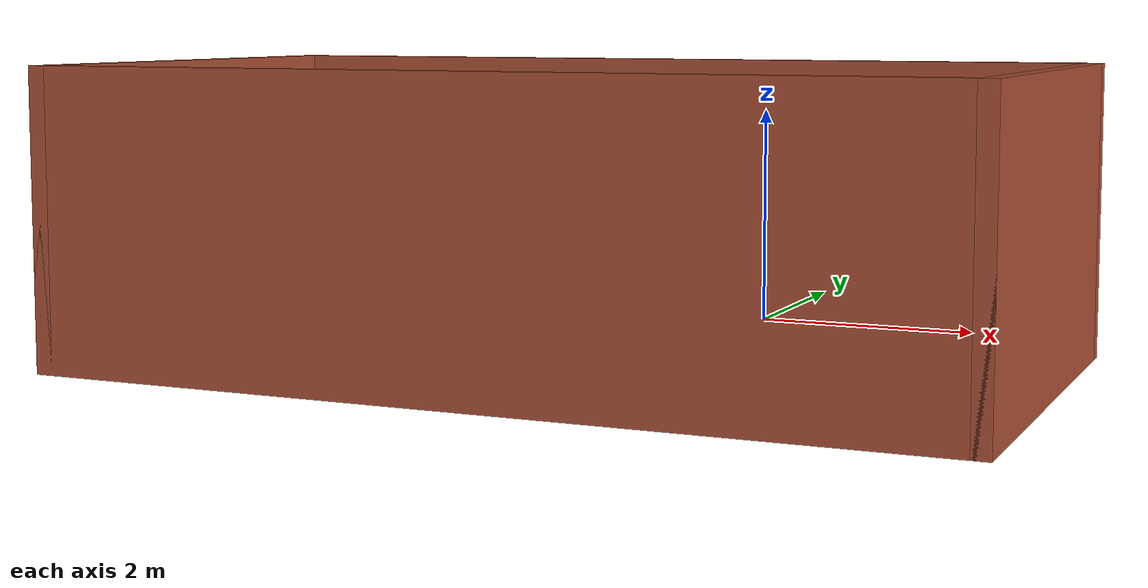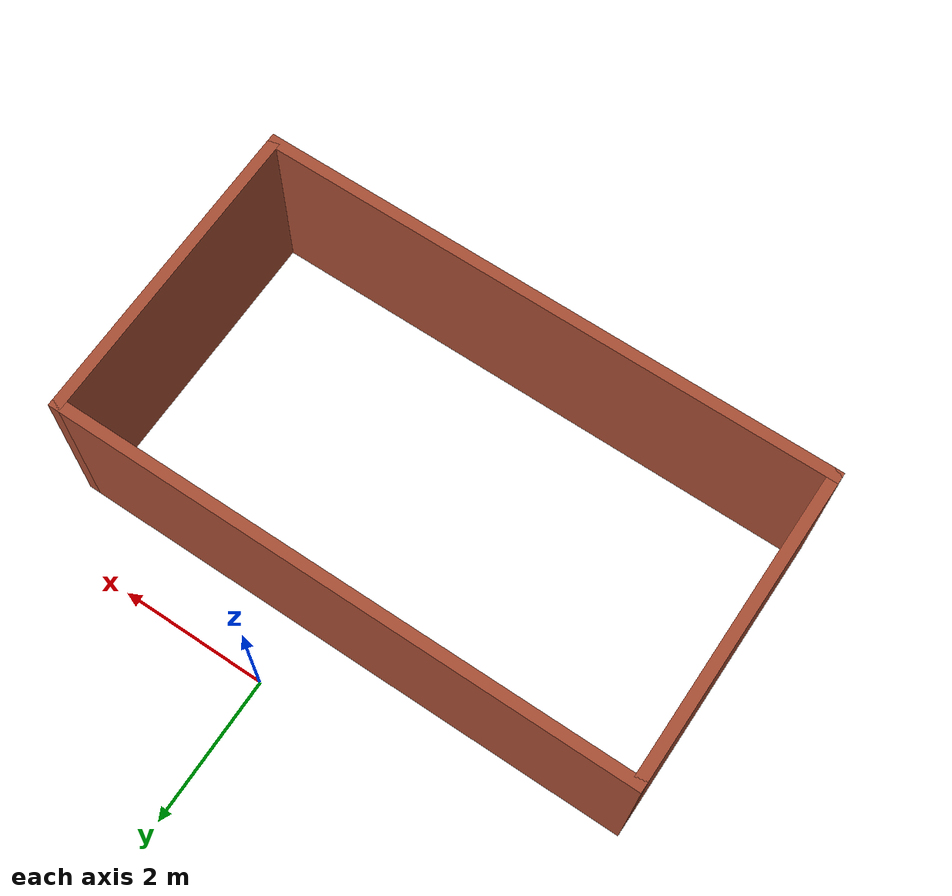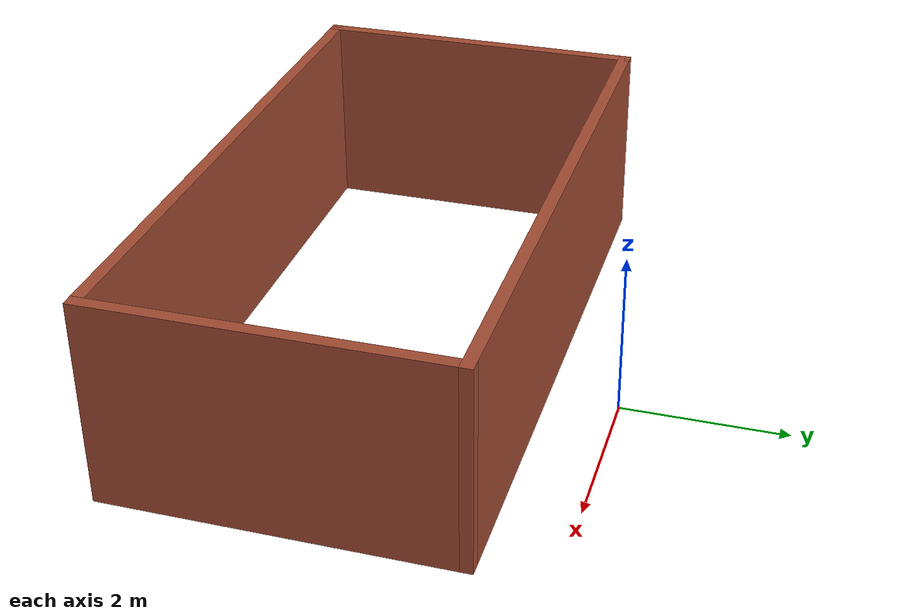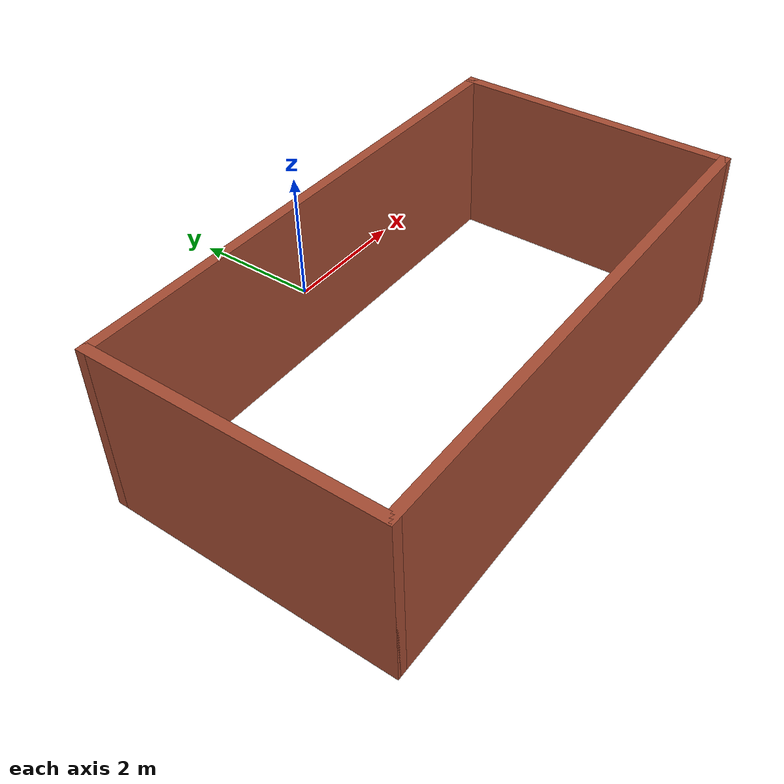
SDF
<?xml version='1.0'?>
<sdf version='1.6'>
  <model name='new_world'>
    <pose frame=''>-0.63 -2.97 0 0 -0 0</pose>
    <link name='Wall_0'>
      <collision name='Wall_0_Collision'>
        <geometry>
          <box>
            <size>4.25 0.15 2.5</size>
          </box>
        </geometry>
        <pose frame=''>0 0 1.25 0 -0 0</pose>
      </collision>
      <visual name='Wall_0_Visual'>
        <pose frame=''>0 0 1.25 0 -0 0</pose>
        <geometry>
          <box>
            <size>4.25 0.15 2.5</size>
          </box>
        </geometry>
        <material>
          <script>
            <uri>file://media/materials/scripts/gazebo.material</uri>
            <name>Gazebo/Bricks</name>
          </script>
          <ambient>1 1 1 1</ambient>
        </material>
      </visual>
      <pose frame=''>-3.8 0 0 0 0 -1.5708</pose>
    </link>
    <link name='Wall_1'>
      <collision name='Wall_1_Collision'>
        <geometry>
          <box>
            <size>7.75 0.15 2.5</size>
          </box>
        </geometry>
        <pose frame=''>0 0 1.25 0 -0 0</pose>
      </collision>
      <visual name='Wall_1_Visual'>
        <pose frame=''>0 0 1.25 0 -0 0</pose>
        <geometry>
          <box>
            <size>7.75 0.15 2.5</size>
          </box>
        </geometry>
        <material>
          <script>
            <uri>file://media/materials/scripts/gazebo.material</uri>
            <name>Gazebo/Bricks</name>
          </script>
          <ambient>1 1 1 1</ambient>
        </material>
      </visual>
      <pose frame=''>0 -2.05 0 0 -0 0</pose>
    </link>
    <link name='Wall_2'>
      <collision name='Wall_2_Collision'>
        <geometry>
          <box>
            <size>4.25 0.15 2.5</size>
          </box>
        </geometry>
        <pose frame=''>0 0 1.25 0 -0 0</pose>
      </collision>
      <visual name='Wall_2_Visual'>
        <pose frame=''>0 0 1.25 0 -0 0</pose>
        <geometry>
          <box>
            <size>4.25 0.15 2.5</size>
          </box>
        </geometry>
        <material>
          <script>
            <uri>file://media/materials/scripts/gazebo.material</uri>
            <name>Gazebo/Bricks</name>
          </script>
          <ambient>1 1 1 1</ambient>
        </material>
      </visual>
      <pose frame=''>3.8 0 0 0 -0 1.5708</pose>
    </link>
    <link name='Wall_3'>
      <collision name='Wall_3_Collision'>
        <geometry>
          <box>
            <size>7.75 0.15 2.5</size>
          </box>
        </geometry>
        <pose frame=''>0 0 1.25 0 -0 0</pose>
      </collision>
      <visual name='Wall_3_Visual'>
        <pose frame=''>0 0 1.25 0 -0 0</pose>
        <geometry>
          <box>
            <size>7.75 0.15 2.5</size>
          </box>
        </geometry>
        <material>
          <script>
            <uri>file://media/materials/scripts/gazebo.material</uri>
            <name>Gazebo/Bricks</name>
          </script>
          <ambient>1 1 1 1</ambient>
        </material>
      </visual>
      <pose frame=''>0 2.05 0 0 -0 3.14159</pose>
    </link>
    <static>1</static>
  </model>
</sdf>
